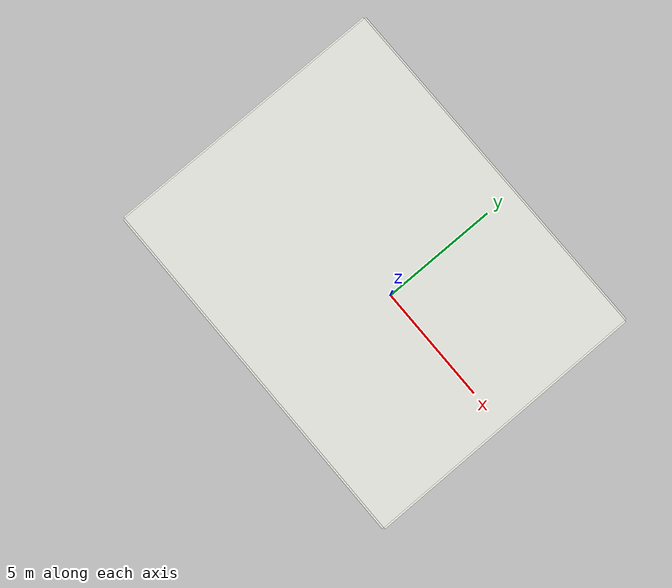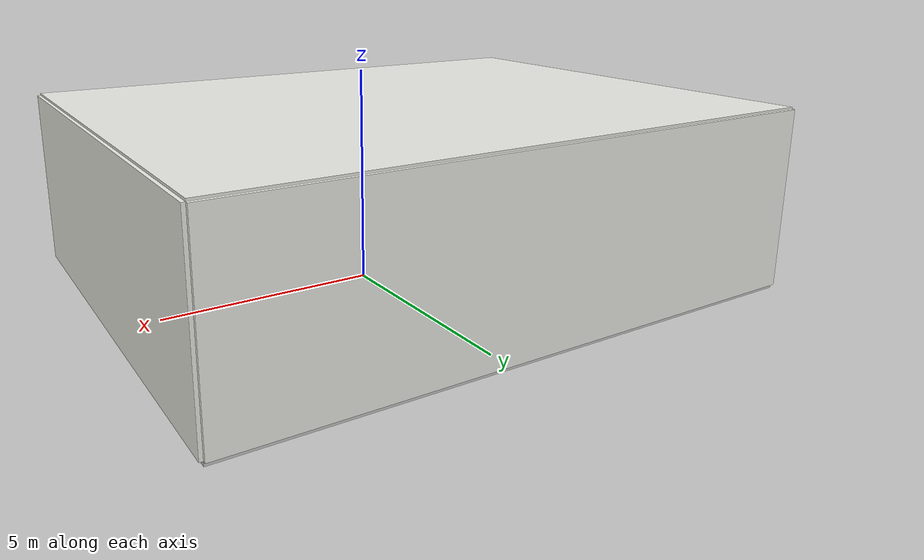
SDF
<sdf version="1.9">
 <world name="mocap_interaction">
  <model name="motion_capture_laboratory">
   <pose>0 0 -0.024 0 0 0</pose>
   <static>true</static>
   <link name="laboratory_structure">
    <collision name="floor_collision">
     <pose>-1 0 -0.05 0 0 0</pose>
     <geometry><box><size>14 11 0.1</size></box></geometry>
    </collision>
    <visual name="floor_visual">
     <pose>-1 0 -0.05 0 0 0</pose>
     <geometry><box><size>14 11 0.1</size></box></geometry>
     <material>
      <ambient>0.72 0.73 0.72 1</ambient>
      <diffuse>0.78 0.79 0.78 1</diffuse>
      <specular>0.10 0.10 0.10 1</specular>
     </material>
    </visual>
    <collision name="wall_positive_x_collision">
     <pose>6 0 2.1 0 0 0</pose>
     <geometry><box><size>0.15 11 4.2</size></box></geometry>
    </collision>
    <visual name="wall_positive_x_visual">
     <pose>6 0 2.1 0 0 0</pose>
     <geometry><box><size>0.15 11 4.2</size></box></geometry>
     <material><ambient>0.88 0.88 0.85 1</ambient><diffuse>0.94 0.94 0.91 1</diffuse></material>
    </visual>
    <collision name="wall_negative_x_collision">
     <pose>-8 0 2.1 0 0 0</pose>
     <geometry><box><size>0.15 11 4.2</size></box></geometry>
    </collision>
    <visual name="wall_negative_x_visual">
     <pose>-8 0 2.1 0 0 0</pose>
     <geometry><box><size>0.15 11 4.2</size></box></geometry>
     <material><ambient>0.88 0.88 0.85 1</ambient><diffuse>0.94 0.94 0.91 1</diffuse></material>
    </visual>
    <collision name="wall_positive_y_collision">
     <pose>-1 5.5 2.1 0 0 0</pose>
     <geometry><box><size>14 0.15 4.2</size></box></geometry>
    </collision>
    <visual name="wall_positive_y_visual">
     <pose>-1 5.5 2.1 0 0 0</pose>
     <geometry><box><size>14 0.15 4.2</size></box></geometry>
     <material><ambient>0.88 0.88 0.85 1</ambient><diffuse>0.94 0.94 0.91 1</diffuse></material>
    </visual>
    <collision name="wall_negative_y_collision">
     <pose>-1 -5.5 2.1 0 0 0</pose>
     <geometry><box><size>14 0.15 4.2</size></box></geometry>
    </collision>
    <visual name="wall_negative_y_visual">
     <pose>-1 -5.5 2.1 0 0 0</pose>
     <geometry><box><size>14 0.15 4.2</size></box></geometry>
     <material><ambient>0.88 0.88 0.85 1</ambient><diffuse>0.94 0.94 0.91 1</diffuse></material>
    </visual>
    <collision name="ceiling_collision">
     <pose>-1 0 4.2 0 0 0</pose>
     <geometry><box><size>14 11 0.1</size></box></geometry>
    </collision>
    <visual name="ceiling_visual">
     <pose>-1 0 4.2 0 0 0</pose>
     <geometry><box><size>14 11 0.1</size></box></geometry>
     <material><ambient>0.82 0.82 0.80 1</ambient><diffuse>0.92 0.92 0.90 1</diffuse></material>
    </visual>
    <visual name="yellow_ceiling_positive_x">
     <pose>4.45 0 4.11 0 0 0</pose>
     <geometry><box><size>0.9 9 0.06</size></box></geometry>
     <material><ambient>0.62 0.48 0.05 1</ambient><diffuse>0.82 0.66 0.10 1</diffuse></material>
    </visual>
    <visual name="yellow_ceiling_negative_x">
     <pose>-4.45 0 4.11 0 0 0</pose>
     <geometry><box><size>0.9 9 0.06</size></box></geometry>
     <material><ambient>0.62 0.48 0.05 1</ambient><diffuse>0.82 0.66 0.10 1</diffuse></material>
    </visual>
    <visual name="yellow_ceiling_positive_y">
     <pose>0 4.45 4.11 0 0 0</pose>
     <geometry><box><size>8 0.9 0.06</size></box></geometry>
     <material><ambient>0.62 0.48 0.05 1</ambient><diffuse>0.82 0.66 0.10 1</diffuse></material>
    </visual>
    <visual name="yellow_ceiling_negative_y">
     <pose>0 -4.45 4.11 0 0 0</pose>
     <geometry><box><size>8 0.9 0.06</size></box></geometry>
     <material><ambient>0.62 0.48 0.05 1</ambient><diffuse>0.82 0.66 0.10 1</diffuse></material>
    </visual>
    <visual name="ceiling_light_1">
     <pose>-2.5 -2.5 4.06 0 0 0</pose>
     <geometry><box><size>1.2 0.3 0.03</size></box></geometry>
     <material>
      <ambient>1 1 0.96 1</ambient>
      <diffuse>1 1 0.96 1</diffuse>
      <emissive>0.8 0.8 0.76 1</emissive>
     </material>
    </visual>
    <visual name="ceiling_light_2">
     <pose>-2.5 2.5 4.06 0 0 0</pose>
     <geometry><box><size>1.2 0.3 0.03</size></box></geometry>
     <material>
      <ambient>1 1 0.96 1</ambient>
      <diffuse>1 1 0.96 1</diffuse>
      <emissive>0.8 0.8 0.76 1</emissive>
     </material>
    </visual>
    <visual name="ceiling_light_3">
     <pose>0 -2.5 4.06 0 0 0</pose>
     <geometry><box><size>1.2 0.3 0.03</size></box></geometry>
     <material>
      <ambient>1 1 0.96 1</ambient>
      <diffuse>1 1 0.96 1</diffuse>
      <emissive>0.8 0.8 0.76 1</emissive>
     </material>
    </visual>
    <visual name="ceiling_light_4">
     <pose>0 2.5 4.06 0 0 0</pose>
     <geometry><box><size>1.2 0.3 0.03</size></box></geometry>
     <material>
      <ambient>1 1 0.96 1</ambient>
      <diffuse>1 1 0.96 1</diffuse>
      <emissive>0.8 0.8 0.76 1</emissive>
     </material>
    </visual>
    <visual name="ceiling_light_5">
     <pose>2.5 -2.5 4.06 0 0 0</pose>
     <geometry><box><size>1.2 0.3 0.03</size></box></geometry>
     <material>
      <ambient>1 1 0.96 1</ambient>
      <diffuse>1 1 0.96 1</diffuse>
      <emissive>0.8 0.8 0.76 1</emissive>
     </material>
    </visual>
    <visual name="ceiling_light_6">
     <pose>2.5 2.5 4.06 0 0 0</pose>
     <geometry><box><size>1.2 0.3 0.03</size></box></geometry>
     <material>
      <ambient>1 1 0.96 1</ambient>
      <diffuse>1 1 0.96 1</diffuse>
      <emissive>0.8 0.8 0.76 1</emissive>
     </material>
    </visual>
    <visual name="ceiling_vent_negative_x_negative_y">
     <pose>-3.3 -1.7 4.055 0 0 0</pose>
     <geometry><box><size>0.65 0.65 0.035</size></box></geometry>
     <material><ambient>0.24 0.25 0.25 1</ambient><diffuse>0.34 0.35 0.35 1</diffuse></material>
    </visual>
    <visual name="ceiling_vent_positive_x_positive_y">
     <pose>3.1 1.8 4.055 0 0 0</pose>
     <geometry><box><size>0.65 0.65 0.035</size></box></geometry>
     <material><ambient>0.24 0.25 0.25 1</ambient><diffuse>0.34 0.35 0.35 1</diffuse></material>
    </visual>
    <collision name="rubber_mat_collision">
     <pose>0 0 0.012 0 0 0</pose>
     <geometry><box><size>6 6 0.024</size></box></geometry>
    </collision>
    <visual name="rubber_mat_visual">
     <pose>0 0 0.012 0 0 0</pose>
     <geometry><box><size>6 6 0.024</size></box></geometry>
     <material>
      <ambient>0.24 0.25 0.27 1</ambient>
      <diffuse>0.34 0.35 0.38 1</diffuse>
      <specular>0.03 0.03 0.03 1</specular>
     </material>
    </visual>
    <visual name="tile_x_negative_2">
     <pose>-2 0 0.027 0 0 0</pose>
     <geometry><box><size>0.012 6 0.006</size></box></geometry>
     <material><ambient>0.42 0.43 0.45 1</ambient><diffuse>0.42 0.43 0.45 1</diffuse></material>
    </visual>
    <visual name="tile_x_negative_1">
     <pose>-1 0 0.027 0 0 0</pose>
     <geometry><box><size>0.012 6 0.006</size></box></geometry>
     <material><ambient>0.42 0.43 0.45 1</ambient><diffuse>0.42 0.43 0.45 1</diffuse></material>
    </visual>
    <visual name="tile_x_0">
     <pose>0 0 0.027 0 0 0</pose>
     <geometry><box><size>0.012 6 0.006</size></box></geometry>
     <material><ambient>0.42 0.43 0.45 1</ambient><diffuse>0.42 0.43 0.45 1</diffuse></material>
    </visual>
    <visual name="tile_x_positive_1">
     <pose>1 0 0.027 0 0 0</pose>
     <geometry><box><size>0.012 6 0.006</size></box></geometry>
     <material><ambient>0.42 0.43 0.45 1</ambient><diffuse>0.42 0.43 0.45 1</diffuse></material>
    </visual>
    <visual name="tile_x_positive_2">
     <pose>2 0 0.027 0 0 0</pose>
     <geometry><box><size>0.012 6 0.006</size></box></geometry>
     <material><ambient>0.42 0.43 0.45 1</ambient><diffuse>0.42 0.43 0.45 1</diffuse></material>
    </visual>
    <visual name="tile_y_negative_2">
     <pose>0 -2 0.027 0 0 0</pose>
     <geometry><box><size>6 0.012 0.006</size></box></geometry>
     <material><ambient>0.42 0.43 0.45 1</ambient><diffuse>0.42 0.43 0.45 1</diffuse></material>
    </visual>
    <visual name="tile_y_negative_1">
     <pose>0 -1 0.027 0 0 0</pose>
     <geometry><box><size>6 0.012 0.006</size></box></geometry>
     <material><ambient>0.42 0.43 0.45 1</ambient><diffuse>0.42 0.43 0.45 1</diffuse></material>
    </visual>
    <visual name="tile_y_0">
     <pose>0 0 0.027 0 0 0</pose>
     <geometry><box><size>6 0.012 0.006</size></box></geometry>
     <material><ambient>0.42 0.43 0.45 1</ambient><diffuse>0.42 0.43 0.45 1</diffuse></material>
    </visual>
    <visual name="tile_y_positive_1">
     <pose>0 1 0.027 0 0 0</pose>
     <geometry><box><size>6 0.012 0.006</size></box></geometry>
     <material><ambient>0.42 0.43 0.45 1</ambient><diffuse>0.42 0.43 0.45 1</diffuse></material>
    </visual>
    <visual name="tile_y_positive_2">
     <pose>0 2 0.027 0 0 0</pose>
     <geometry><box><size>6 0.012 0.006</size></box></geometry>
     <material><ambient>0.42 0.43 0.45 1</ambient><diffuse>0.42 0.43 0.45 1</diffuse></material>
    </visual>
    <visual name="takeoff_marker_outer">
     <pose>0 0 0.0245 0 0 0</pose>
     <geometry><cylinder><radius>0.36</radius><length>0.001</length></cylinder></geometry>
     <material><ambient>0.88 0.88 0.86 1</ambient><diffuse>0.94 0.94 0.92 1</diffuse></material>
    </visual>
    <visual name="takeoff_marker_center">
     <pose>0 0 0.0251 0 0 0</pose>
     <geometry><cylinder><radius>0.23</radius><length>0.001</length></cylinder></geometry>
     <material><ambient>0.22 0.23 0.25 1</ambient><diffuse>0.30 0.31 0.34 1</diffuse></material>
    </visual>
    <visual name="forward_marker">
     <pose>0.44 0 0.0251 0 0 0</pose>
     <geometry><box><size>0.5 0.06 0.001</size></box></geometry>
     <material><ambient>0.88 0.88 0.86 1</ambient><diffuse>0.94 0.94 0.92 1</diffuse></material>
    </visual>
    <visual name="lower_frame_positive_x">
     <pose>4 0 0.033 0 0 0</pose>
     <geometry><box><size>0.035 8 0.008</size></box></geometry>
     <material><ambient>0.72 0.25 0.26 1</ambient><diffuse>0.90 0.38 0.39 1</diffuse></material>
    </visual>
    <visual name="lower_frame_negative_x">
     <pose>-4 0 0.033 0 0 0</pose>
     <geometry><box><size>0.035 8 0.008</size></box></geometry>
     <material><ambient>0.72 0.25 0.26 1</ambient><diffuse>0.90 0.38 0.39 1</diffuse></material>
    </visual>
    <visual name="lower_frame_positive_y">
     <pose>0 4 0.033 0 0 0</pose>
     <geometry><box><size>8 0.035 0.008</size></box></geometry>
     <material><ambient>0.72 0.25 0.26 1</ambient><diffuse>0.90 0.38 0.39 1</diffuse></material>
    </visual>
    <visual name="lower_frame_negative_y">
     <pose>0 -4 0.033 0 0 0</pose>
     <geometry><box><size>8 0.035 0.008</size></box></geometry>
     <material><ambient>0.72 0.25 0.26 1</ambient><diffuse>0.90 0.38 0.39 1</diffuse></material>
    </visual>
    <visual name="upper_frame_positive_x">
     <pose>4 0 3 0 0 0</pose>
     <geometry><box><size>0.07 8 0.07</size></box></geometry>
     <material><ambient>0.82 0.82 0.80 1</ambient><diffuse>0.94 0.94 0.92 1</diffuse></material>
    </visual>
    <visual name="upper_frame_negative_x">
     <pose>-4 0 3 0 0 0</pose>
     <geometry><box><size>0.07 8 0.07</size></box></geometry>
     <material><ambient>0.82 0.82 0.80 1</ambient><diffuse>0.94 0.94 0.92 1</diffuse></material>
    </visual>
    <visual name="upper_frame_positive_y">
     <pose>0 4 3 0 0 0</pose>
     <geometry><box><size>8 0.07 0.07</size></box></geometry>
     <material><ambient>0.82 0.82 0.80 1</ambient><diffuse>0.94 0.94 0.92 1</diffuse></material>
    </visual>
    <visual name="upper_frame_negative_y">
     <pose>0 -4 3 0 0 0</pose>
     <geometry><box><size>8 0.07 0.07</size></box></geometry>
     <material><ambient>0.82 0.82 0.80 1</ambient><diffuse>0.94 0.94 0.92 1</diffuse></material>
    </visual>
    <visual name="positive_x_center_blackout_panel">
     <pose>5.91 0 1.65 0 0 0</pose>
     <geometry><box><size>0.03 2.0 2.45</size></box></geometry>
     <material><ambient>0.42 0.43 0.44 1</ambient><diffuse>0.55 0.56 0.57 1</diffuse></material>
    </visual>
    <visual name="positive_y_double_door">
     <pose>2.6 5.415 1.15 0 0 0</pose>
     <geometry><box><size>1.8 0.03 2.3</size></box></geometry>
     <material><ambient>0.46 0.45 0.43 1</ambient><diffuse>0.60 0.59 0.56 1</diffuse></material>
    </visual>
    <visual name="negative_y_wall_panel">
     <pose>0 -5.415 1.7 0 0 0</pose>
     <geometry><box><size>3.2 0.03 1.6</size></box></geometry>
     <material><ambient>0.42 0.43 0.44 1</ambient><diffuse>0.55 0.56 0.57 1</diffuse></material>
    </visual>
    <visual name="positive_y_wall_board">
     <pose>0.2 5.415 1.8 0 0 0</pose>
     <geometry><box><size>2.8 0.03 1.3</size></box></geometry>
     <material><ambient>0.78 0.79 0.78 1</ambient><diffuse>0.88 0.89 0.88 1</diffuse></material>
    </visual>
    <visual name="positive_x_blackout_panel_negative_y">
     <pose>5.91 -3.15 1.65 0 0 0</pose>
     <geometry><box><size>0.03 2.0 2.45</size></box></geometry>
     <material><ambient>0.42 0.43 0.44 1</ambient><diffuse>0.55 0.56 0.57 1</diffuse></material>
    </visual>
    <visual name="positive_x_blackout_panel_positive_y">
     <pose>5.91 3.15 1.65 0 0 0</pose>
     <geometry><box><size>0.03 2.0 2.45</size></box></geometry>
     <material><ambient>0.42 0.43 0.44 1</ambient><diffuse>0.55 0.56 0.57 1</diffuse></material>
    </visual>
    <visual name="positive_y_wall_display">
     <pose>-3.8 5.405 1.8 0 0 0</pose>
     <geometry><box><size>2.2 0.04 1.2</size></box></geometry>
     <material>
      <ambient>0.015 0.02 0.025 1</ambient>
      <diffuse>0.025 0.035 0.045 1</diffuse>
      <specular>0.18 0.18 0.18 1</specular>
     </material>
    </visual>
    <visual name="positive_y_exit_sign">
     <pose>3.8 5.39 2.75 0 0 0</pose>
     <geometry><box><size>0.75 0.05 0.24</size></box></geometry>
     <material>
      <ambient>0.02 0.45 0.24 1</ambient>
      <diffuse>0.03 0.65 0.34 1</diffuse>
      <emissive>0.02 0.30 0.16 1</emissive>
     </material>
    </visual>
    <collision name="control_desk_collision">
     <pose>-4.9 2.7 0.38 0 0 0</pose>
     <geometry><box><size>1.2 2.2 0.76</size></box></geometry>
    </collision>
    <visual name="control_desk_visual">
     <pose>-4.9 2.7 0.38 0 0 0</pose>
     <geometry><box><size>1.2 2.2 0.76</size></box></geometry>
     <material><ambient>0.75 0.75 0.73 1</ambient><diffuse>0.84 0.84 0.82 1</diffuse></material>
    </visual>
    <visual name="camera_rail_positive_x">
     <pose>5.25 0 2.86 0 0 0</pose>
     <geometry><box><size>0.08 9.58 0.08</size></box></geometry>
     <material>
      <ambient>0.20 0.21 0.22 1</ambient>
      <diffuse>0.32 0.33 0.34 1</diffuse>
      <specular>0.25 0.25 0.25 1</specular>
     </material>
    </visual>
    <visual name="camera_rail_negative_x">
     <pose>-5.25 0 2.86 0 0 0</pose>
     <geometry><box><size>0.08 9.58 0.08</size></box></geometry>
     <material>
      <ambient>0.20 0.21 0.22 1</ambient>
      <diffuse>0.32 0.33 0.34 1</diffuse>
      <specular>0.25 0.25 0.25 1</specular>
     </material>
    </visual>
    <visual name="camera_rail_positive_y">
     <pose>0 4.75 2.86 0 0 0</pose>
     <geometry><box><size>10.58 0.08 0.08</size></box></geometry>
     <material>
      <ambient>0.20 0.21 0.22 1</ambient>
      <diffuse>0.32 0.33 0.34 1</diffuse>
      <specular>0.25 0.25 0.25 1</specular>
     </material>
    </visual>
    <visual name="camera_rail_negative_y">
     <pose>0 -4.75 2.86 0 0 0</pose>
     <geometry><box><size>10.58 0.08 0.08</size></box></geometry>
     <material>
      <ambient>0.20 0.21 0.22 1</ambient>
      <diffuse>0.32 0.33 0.34 1</diffuse>
      <specular>0.25 0.25 0.25 1</specular>
     </material>
    </visual>
    <visual name="camera_number_01">
     <pose>-5.095 -3.3 2.612 0 0.35 0</pose>
     <geometry><box><size>0.008 0.062 0.030</size></box></geometry>
     <material>
      <ambient>0.24 0.002 0.004 1</ambient>
      <diffuse>0.62 0.006 0.010 1</diffuse>
      <emissive>0.18 0.001 0.002 1</emissive>
     </material>
    </visual>
    <visual name="camera_number_02">
     <pose>-5.095 -1.1 2.612 0 0.35 0</pose>
     <geometry><box><size>0.008 0.062 0.030</size></box></geometry>
     <material>
      <ambient>0.24 0.002 0.004 1</ambient>
      <diffuse>0.62 0.006 0.010 1</diffuse>
      <emissive>0.18 0.001 0.002 1</emissive>
     </material>
    </visual>
    <visual name="camera_number_03">
     <pose>-5.095 1.1 2.612 0 0.35 0</pose>
     <geometry><box><size>0.008 0.062 0.030</size></box></geometry>
     <material>
      <ambient>0.24 0.002 0.004 1</ambient>
      <diffuse>0.62 0.006 0.010 1</diffuse>
      <emissive>0.18 0.001 0.002 1</emissive>
     </material>
    </visual>
    <visual name="camera_number_04">
     <pose>-5.095 3.3 2.612 0 0.35 0</pose>
     <geometry><box><size>0.008 0.062 0.030</size></box></geometry>
     <material>
      <ambient>0.24 0.002 0.004 1</ambient>
      <diffuse>0.62 0.006 0.010 1</diffuse>
      <emissive>0.18 0.001 0.002 1</emissive>
     </material>
    </visual>
    <visual name="camera_number_05">
     <pose>5.095 -3.3 2.612 0 0.35 3.14159265359</pose>
     <geometry><box><size>0.008 0.062 0.030</size></box></geometry>
     <material>
      <ambient>0.24 0.002 0.004 1</ambient>
      <diffuse>0.62 0.006 0.010 1</diffuse>
      <emissive>0.18 0.001 0.002 1</emissive>
     </material>
    </visual>
    <visual name="camera_number_06">
     <pose>5.095 -1.1 2.612 0 0.35 3.14159265359</pose>
     <geometry><box><size>0.008 0.062 0.030</size></box></geometry>
     <material>
      <ambient>0.24 0.002 0.004 1</ambient>
      <diffuse>0.62 0.006 0.010 1</diffuse>
      <emissive>0.18 0.001 0.002 1</emissive>
     </material>
    </visual>
    <visual name="camera_number_07">
     <pose>5.095 1.1 2.612 0 0.35 3.14159265359</pose>
     <geometry><box><size>0.008 0.062 0.030</size></box></geometry>
     <material>
      <ambient>0.24 0.002 0.004 1</ambient>
      <diffuse>0.62 0.006 0.010 1</diffuse>
      <emissive>0.18 0.001 0.002 1</emissive>
     </material>
    </visual>
    <visual name="camera_number_08">
     <pose>5.095 3.3 2.612 0 0.35 3.14159265359</pose>
     <geometry><box><size>0.008 0.062 0.030</size></box></geometry>
     <material>
      <ambient>0.24 0.002 0.004 1</ambient>
      <diffuse>0.62 0.006 0.010 1</diffuse>
      <emissive>0.18 0.001 0.002 1</emissive>
     </material>
    </visual>
    <visual name="camera_number_09">
     <pose>-3.2 4.595 2.612 0 0.35 -1.57079632679</pose>
     <geometry><box><size>0.008 0.062 0.030</size></box></geometry>
     <material>
      <ambient>0.24 0.002 0.004 1</ambient>
      <diffuse>0.62 0.006 0.010 1</diffuse>
      <emissive>0.18 0.001 0.002 1</emissive>
     </material>
    </visual>
    <visual name="camera_number_10">
     <pose>0 4.595 2.612 0 0.35 -1.57079632679</pose>
     <geometry><box><size>0.008 0.062 0.030</size></box></geometry>
     <material>
      <ambient>0.24 0.002 0.004 1</ambient>
      <diffuse>0.62 0.006 0.010 1</diffuse>
      <emissive>0.18 0.001 0.002 1</emissive>
     </material>
    </visual>
    <visual name="camera_number_11">
     <pose>3.2 4.595 2.612 0 0.35 -1.57079632679</pose>
     <geometry><box><size>0.008 0.062 0.030</size></box></geometry>
     <material>
      <ambient>0.24 0.002 0.004 1</ambient>
      <diffuse>0.62 0.006 0.010 1</diffuse>
      <emissive>0.18 0.001 0.002 1</emissive>
     </material>
    </visual>
    <visual name="camera_number_12">
     <pose>-3.2 -4.595 2.612 0 0.35 1.57079632679</pose>
     <geometry><box><size>0.008 0.062 0.030</size></box></geometry>
     <material>
      <ambient>0.24 0.002 0.004 1</ambient>
      <diffuse>0.62 0.006 0.010 1</diffuse>
      <emissive>0.18 0.001 0.002 1</emissive>
     </material>
    </visual>
    <visual name="camera_number_13">
     <pose>0 -4.595 2.612 0 0.35 1.57079632679</pose>
     <geometry><box><size>0.008 0.062 0.030</size></box></geometry>
     <material>
      <ambient>0.24 0.002 0.004 1</ambient>
      <diffuse>0.62 0.006 0.010 1</diffuse>
      <emissive>0.18 0.001 0.002 1</emissive>
     </material>
    </visual>
    <visual name="camera_number_14">
     <pose>3.2 -4.595 2.612 0 0.35 1.57079632679</pose>
     <geometry><box><size>0.008 0.062 0.030</size></box></geometry>
     <material>
      <ambient>0.24 0.002 0.004 1</ambient>
      <diffuse>0.62 0.006 0.010 1</diffuse>
      <emissive>0.18 0.001 0.002 1</emissive>
     </material>
    </visual>
   </link>
  </model>
 </world>
</sdf>
